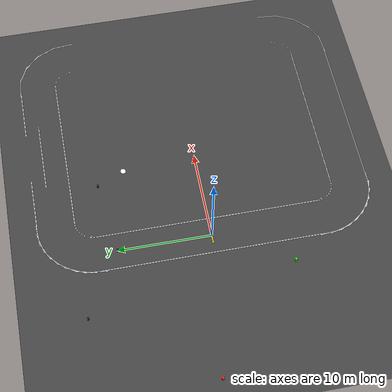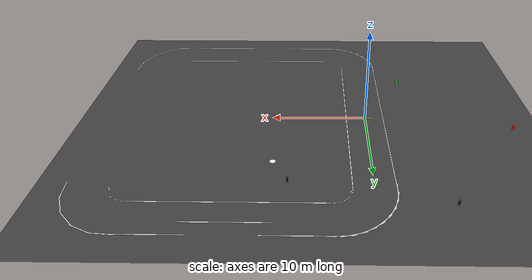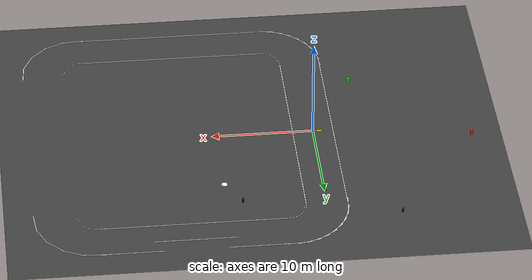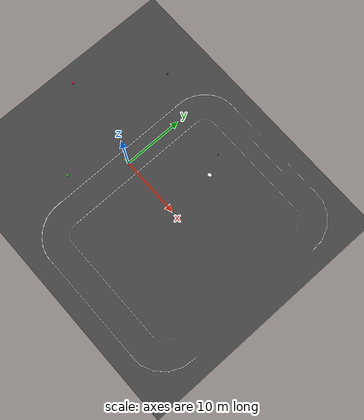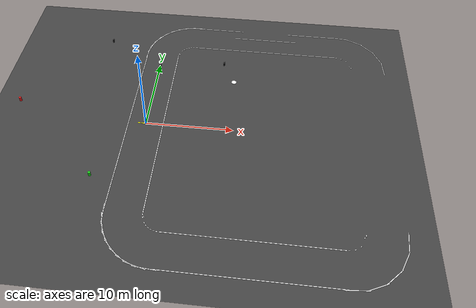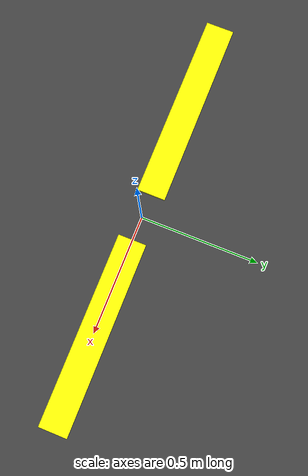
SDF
<?xml version="1.0" ?>
<sdf version="1.8">
  <world name="competition_track">

    <!-- Physics & Plugins -->
    <physics name="1ms" type="ignored">
      <max_step_size>0.001</max_step_size>
      <real_time_factor>1.0</real_time_factor>
    </physics>
    <plugin filename="gz-sim-physics-system" name="gz::sim::systems::Physics"/>
    <plugin filename="gz-sim-user-commands-system" name="gz::sim::systems::UserCommands"/>
    <plugin filename="gz-sim-scene-broadcaster-system" name="gz::sim::systems::SceneBroadcaster"/>
    <plugin filename="gz-sim-sensors-system" name="gz::sim::systems::Sensors">
      <render_engine>ogre2</render_engine>
    </plugin>
    <plugin filename="gz-sim-imu-system" name="gz::sim::systems::Imu"/>
    <plugin filename="gz-sim-navsat-system" name="gz::sim::systems::NavSat"/>

    <spherical_coordinates>
      <surface_model>EARTH_WGS84</surface_model>
      <world_frame_orientation>ENU</world_frame_orientation>
      <latitude_deg>31.2001</latitude_deg>
      <longitude_deg>29.9187</longitude_deg>
      <elevation>10.0</elevation>
      <heading_deg>0.0</heading_deg>
    </spherical_coordinates>

    <!-- Lighting -->
    <light name="sun" type="directional">
      <pose>0 10 20 0 0 0</pose>
      <diffuse>0.95 0.95 0.90 1</diffuse>
      <specular>0.1 0.1 0.1 1</specular>
      <direction>-0.3 0.1 -0.9</direction>
      <cast_shadows>true</cast_shadows>
    </light>

    <!-- Ground Plane -->
    <model name="ground_plane">
      <static>true</static>
      <link name="link">
        <collision name="col">
          <geometry>
            <plane>
              <normal>0 0 1</normal>
              <size>200 200</size>
            </plane>
          </geometry>
        </collision>
        <visual name="vis">
          <geometry>
            <plane>
              <normal>0 0 1</normal>
              <size>200 200</size>
            </plane>
          </geometry>
          <material>
            <ambient>0.20 0.20 0.20 1</ambient>
            <diffuse>0.25 0.25 0.25 1</diffuse>
          </material>
        </visual>
      </link>
    </model>

    <!-- Track Borders -->
    <model name="track_borders">
      <static>true</static>
      <pose>2 0 0.005 0 0 -1.5708</pose>

      <!-- Bottom Straight -->
      <link name="bot_inner">
        <visual name="v">
          <pose>0 0 0 0 0 0</pose>
          <geometry><box><size>24.0 0.08 0.01</size></box></geometry>
          <material><ambient>1 1 1 1</ambient><diffuse>1 1 1 1</diffuse></material>
        </visual>
      </link>
      <link name="bot_outer">
        <visual name="v">
          <pose>0 -4.0 0 0 0 0</pose>
          <geometry><box><size>24.0 0.08 0.01</size></box></geometry>
          <material><ambient>1 1 1 1</ambient><diffuse>1 1 1 1</diffuse></material>
        </visual>
      </link>

      <!-- Right Straight -->
      <link name="right_inner">
        <visual name="v">
          <pose>14.0 11.0 0 0 0 1.5708</pose>
          <geometry><box><size>18.0 0.08 0.01</size></box></geometry>
          <material><ambient>1 1 1 1</ambient><diffuse>1 1 1 1</diffuse></material>
        </visual>
      </link>
      <link name="right_outer">
        <visual name="v">
          <pose>18.0 11.0 0 0 0 1.5708</pose>
          <geometry><box><size>18.0 0.08 0.01</size></box></geometry>
          <material><ambient>1 1 1 1</ambient><diffuse>1 1 1 1</diffuse></material>
        </visual>
      </link>

      <!-- ==================== LEFT STRAIGHT WITH NARROW SECTION ==================== -->

      <!-- Inner border stays straight the whole height (y from ~2 to ~20) -->
      <link name="left_inner">
        <visual name="v">
          <pose>-14.0 11.0 0 0 0 1.5708</pose>
          <geometry><box><size>18.0 0.08 0.01</size></box></geometry>
          <material><ambient>1 1 1 1</ambient><diffuse>1 1 1 1</diffuse></material>
        </visual>
      </link>

      <!-- Outer border - normal width at bottom -->
      <link name="left_outer_bottom">
        <visual name="v">
          <pose>-18.0 5.0 0 0 0 1.5708</pose>
          <geometry><box><size>6.0 0.08 0.01</size></box></geometry>
          <material><ambient>1 1 1 1</ambient><diffuse>1 1 1 1</diffuse></material>
        </visual>
      </link>

      <!-- Narrow section (thinner part) - outer moves inward -->
      <link name="left_outer_narrow">
        <visual name="v">
          <pose>-16.5 11.0 0 0 0 1.5708</pose>
          <geometry><box><size>8.0 0.08 0.01</size></box></geometry>
          <material><ambient>1 1 1 1</ambient><diffuse>1 1 1 1</diffuse></material>
        </visual>
      </link>

      <!-- Outer border - normal width at top -->
      <link name="left_outer_top">
        <visual name="v">
          <pose>-18.0 17.0 0 0 0 1.5708</pose>
          <geometry><box><size>6.0 0.08 0.01</size></box></geometry>
          <material><ambient>1 1 1 1</ambient><diffuse>1 1 1 1</diffuse></material>
        </visual>
      </link>

      <!-- SE Inner Corner -->
      <link name="se_inner">
        <visual name="s0"><pose>12.174 0.008 0 0 0 0.087</pose><geometry><box><size>0.18 0.08 0.01</size></box></geometry><material><ambient>1 1 1 1</ambient><diffuse>1 1 1 1</diffuse></material></visual>
        <visual name="s1"><pose>12.520 0.068 0 0 0 0.262</pose><geometry><box><size>0.18 0.08 0.01</size></box></geometry><material><ambient>1 1 1 1</ambient><diffuse>1 1 1 1</diffuse></material></visual>
        <visual name="s2"><pose>12.452 0.188 0 0 0 0.436</pose><geometry><box><size>0.18 0.08 0.01</size></box></geometry><material><ambient>1 1 1 1</ambient><diffuse>1 1 1 1</diffuse></material></visual>
        <visual name="s3"><pose>13.158 0.362 0 0 0 0.611</pose><geometry><box><size>0.18 0.08 0.01</size></box></geometry><material><ambient>1 1 1 1</ambient><diffuse>1 1 1 1</diffuse></material></visual>
        <visual name="s4"><pose>13.427 0.584 0 0 0 0.785</pose><geometry><box><size>0.18 0.08 0.01</size></box></geometry><material><ambient>1 1 1 1</ambient><diffuse>1 1 1 1</diffuse></material></visual>
        <visual name="s5"><pose>13.650 0.842 0 0 0 0.960</pose><geometry><box><size>0.18 0.08 0.01</size></box></geometry><material><ambient>1 1 1 1</ambient><diffuse>1 1 1 1</diffuse></material></visual>
        <visual name="s6"><pose>13.821 1.130 0 0 0 1.134</pose><geometry><box><size>0.18 0.08 0.01</size></box></geometry><material><ambient>1 1 1 1</ambient><diffuse>1 1 1 1</diffuse></material></visual>
        <visual name="s7"><pose>13.935 1.436 0 0 0 1.309</pose><geometry><box><size>0.18 0.08 0.01</size></box></geometry><material><ambient>1 1 1 1</ambient><diffuse>1 1 1 1</diffuse></material></visual>
        <visual name="s8"><pose>13.989 1.749 0 0 0 1.484</pose><geometry><box><size>0.18 0.08 0.01</size></box></geometry><material><ambient>1 1 1 1</ambient><diffuse>1 1 1 1</diffuse></material></visual>
      </link>

      <!-- SE Outer Corner -->
      <link name="se_outer">
        <visual name="s0"><pose>12.523 -3.977 0 0 0 0.087</pose><geometry><box><size>2.4 0.08 0.01</size></box></geometry><material><ambient>1 1 1 1</ambient><diffuse>1 1 1 1</diffuse></material></visual>
        <visual name="s1"><pose>13.560 -3.795 0 0 0 0.262</pose><geometry><box><size>2.4 0.08 0.01</size></box></geometry><material><ambient>1 1 1 1</ambient><diffuse>1 1 1 1</diffuse></material></visual>
        <visual name="s2"><pose>14.557 -3.435 0 0 0 0.436</pose><geometry><box><size>2.4 0.08 0.01</size></box></geometry><material><ambient>1 1 1 1</ambient><diffuse>1 1 1 1</diffuse></material></visual>
        <visual name="s3"><pose>15.474 -2.913 0 0 0 0.611</pose><geometry><box><size>2.4 0.08 0.01</size></box></geometry><material><ambient>1 1 1 1</ambient><diffuse>1 1 1 1</diffuse></material></visual>
        <visual name="s4"><pose>16.282 -2.247 0 0 0 0.785</pose><geometry><box><size>2.4 0.08 0.01</size></box></geometry><material><ambient>1 1 1 1</ambient><diffuse>1 1 1 1</diffuse></material></visual>
        <visual name="s5"><pose>16.950 -1.474 0 0 0 0.960</pose><geometry><box><size>2.4 0.08 0.01</size></box></geometry><material><ambient>1 1 1 1</ambient><diffuse>1 1 1 1</diffuse></material></visual>
        <visual name="s6"><pose>17.464 -0.612 0 0 0 1.134</pose><geometry><box><size>2.4 0.08 0.01</size></box></geometry><material><ambient>1 1 1 1</ambient><diffuse>1 1 1 1</diffuse></material></visual>
        <visual name="s7"><pose>17.805 0.306 0 0 0 1.309</pose><geometry><box><size>2.4 0.08 0.01</size></box></geometry><material><ambient>1 1 1 1</ambient><diffuse>1 1 1 1</diffuse></material></visual>
        <visual name="s8"><pose>17.968 1.248 0 0 0 1.484</pose><geometry><box><size>2.4 0.08 0.01</size></box></geometry><material><ambient>1 1 1 1</ambient><diffuse>1 1 1 1</diffuse></material></visual>
      </link>

      <!-- SW Inner Corner -->
      <link name="sw_inner">
        <visual name="s0"><pose>-12.174 0.008 0 0 0 -0.087</pose><geometry><box><size>0.18 0.08 0.01</size></box></geometry><material><ambient>1 1 1 1</ambient><diffuse>1 1 1 1</diffuse></material></visual>
        <visual name="s1"><pose>-12.520 0.068 0 0 0 -0.262</pose><geometry><box><size>0.18 0.08 0.01</size></box></geometry><material><ambient>1 1 1 1</ambient><diffuse>1 1 1 1</diffuse></material></visual>
        <visual name="s2"><pose>-12.452 0.188 0 0 0 -0.436</pose><geometry><box><size>0.18 0.08 0.01</size></box></geometry><material><ambient>1 1 1 1</ambient><diffuse>1 1 1 1</diffuse></material></visual>
        <visual name="s3"><pose>-13.158 0.362 0 0 0 -0.611</pose><geometry><box><size>0.18 0.08 0.01</size></box></geometry><material><ambient>1 1 1 1</ambient><diffuse>1 1 1 1</diffuse></material></visual>
        <visual name="s4"><pose>-13.427 0.584 0 0 0 -0.785</pose><geometry><box><size>0.18 0.08 0.01</size></box></geometry><material><ambient>1 1 1 1</ambient><diffuse>1 1 1 1</diffuse></material></visual>
        <visual name="s5"><pose>-13.650 0.842 0 0 0 -0.960</pose><geometry><box><size>0.18 0.08 0.01</size></box></geometry><material><ambient>1 1 1 1</ambient><diffuse>1 1 1 1</diffuse></material></visual>
        <visual name="s6"><pose>-13.821 1.130 0 0 0 -1.134</pose><geometry><box><size>0.18 0.08 0.01</size></box></geometry><material><ambient>1 1 1 1</ambient><diffuse>1 1 1 1</diffuse></material></visual>
        <visual name="s7"><pose>-13.935 1.436 0 0 0 -1.309</pose><geometry><box><size>0.18 0.08 0.01</size></box></geometry><material><ambient>1 1 1 1</ambient><diffuse>1 1 1 1</diffuse></material></visual>
        <visual name="s8"><pose>-13.989 1.749 0 0 0 -1.484</pose><geometry><box><size>0.18 0.08 0.01</size></box></geometry><material><ambient>1 1 1 1</ambient><diffuse>1 1 1 1</diffuse></material></visual>
      </link>

      <!-- SW Outer Corner -->
      <link name="sw_outer">
        <visual name="s0"><pose>-12.523 -3.977 0 0 0 -0.087</pose><geometry><box><size>2.4 0.08 0.01</size></box></geometry><material><ambient>1 1 1 1</ambient><diffuse>1 1 1 1</diffuse></material></visual>
        <visual name="s1"><pose>-13.560 -3.795 0 0 0 -0.262</pose><geometry><box><size>2.4 0.08 0.01</size></box></geometry><material><ambient>1 1 1 1</ambient><diffuse>1 1 1 1</diffuse></material></visual>
        <visual name="s2"><pose>-14.557 -3.435 0 0 0 -0.436</pose><geometry><box><size>2.4 0.08 0.01</size></box></geometry><material><ambient>1 1 1 1</ambient><diffuse>1 1 1 1</diffuse></material></visual>
        <visual name="s3"><pose>-15.474 -2.913 0 0 0 -0.611</pose><geometry><box><size>2.4 0.08 0.01</size></box></geometry><material><ambient>1 1 1 1</ambient><diffuse>1 1 1 1</diffuse></material></visual>
        <visual name="s4"><pose>-16.282 -2.247 0 0 0 -0.785</pose><geometry><box><size>2.4 0.08 0.01</size></box></geometry><material><ambient>1 1 1 1</ambient><diffuse>1 1 1 1</diffuse></material></visual>
        <visual name="s5"><pose>-16.950 -1.474 0 0 0 -0.960</pose><geometry><box><size>2.4 0.08 0.01</size></box></geometry><material><ambient>1 1 1 1</ambient><diffuse>1 1 1 1</diffuse></material></visual>
        <visual name="s6"><pose>-17.464 -0.612 0 0 0 -1.134</pose><geometry><box><size>2.4 0.08 0.01</size></box></geometry><material><ambient>1 1 1 1</ambient><diffuse>1 1 1 1</diffuse></material></visual>
        <visual name="s7"><pose>-17.805 0.306 0 0 0 -1.309</pose><geometry><box><size>2.4 0.08 0.01</size></box></geometry><material><ambient>1 1 1 1</ambient><diffuse>1 1 1 1</diffuse></material></visual>
        <visual name="s8"><pose>-17.968 1.248 0 0 0 -1.484</pose><geometry><box><size>2.4 0.08 0.01</size></box></geometry><material><ambient>1 1 1 1</ambient><diffuse>1 1 1 1</diffuse></material></visual>
      </link>

      <!-- NE Inner Corner -->
      <link name="ne_inner">
        <visual name="s0"><pose>13.989 20.251 0 0 0 1.658</pose><geometry><box><size>0.18 0.08 0.01</size></box></geometry><material><ambient>1 1 1 1</ambient><diffuse>1 1 1 1</diffuse></material></visual>
        <visual name="s1"><pose>13.821 20.870 0 0 0 2.007</pose><geometry><box><size>0.18 0.08 0.01</size></box></geometry><material><ambient>1 1 1 1</ambient><diffuse>1 1 1 1</diffuse></material></visual>
        <visual name="s2"><pose>13.427 21.416 0 0 0 2.356</pose><geometry><box><size>0.18 0.08 0.01</size></box></geometry><material><ambient>1 1 1 1</ambient><diffuse>1 1 1 1</diffuse></material></visual>
        <visual name="s3"><pose>12.452 21.812 0 0 0 2.705</pose><geometry><box><size>0.18 0.08 0.01</size></box></geometry><material><ambient>1 1 1 1</ambient><diffuse>1 1 1 1</diffuse></material></visual>
        <visual name="s4"><pose>12.174 21.992 0 0 0 3.054</pose><geometry><box><size>0.18 0.08 0.01</size></box></geometry><material><ambient>1 1 1 1</ambient><diffuse>1 1 1 1</diffuse></material></visual>
      </link>

      <!-- NE Outer Corner -->
      <link name="ne_outer">
        <visual name="s0"><pose>17.968 20.752 0 0 0 1.658</pose><geometry><box><size>2.4 0.08 0.01</size></box></geometry><material><ambient>1 1 1 1</ambient><diffuse>1 1 1 1</diffuse></material></visual>
        <visual name="s1"><pose>17.464 22.612 0 0 0 2.007</pose><geometry><box><size>2.4 0.08 0.01</size></box></geometry><material><ambient>1 1 1 1</ambient><diffuse>1 1 1 1</diffuse></material></visual>
        <visual name="s2"><pose>16.282 24.247 0 0 0 2.356</pose><geometry><box><size>2.4 0.08 0.01</size></box></geometry><material><ambient>1 1 1 1</ambient><diffuse>1 1 1 1</diffuse></material></visual>
        <visual name="s3"><pose>14.557 25.435 0 0 0 2.705</pose><geometry><box><size>2.4 0.08 0.01</size></box></geometry><material><ambient>1 1 1 1</ambient><diffuse>1 1 1 1</diffuse></material></visual>
        <visual name="s4"><pose>12.523 25.977 0 0 0 3.054</pose><geometry><box><size>2.4 0.08 0.01</size></box></geometry><material><ambient>1 1 1 1</ambient><diffuse>1 1 1 1</diffuse></material></visual>
      </link>

      <!-- NW Inner Corner -->
      <link name="nw_inner">
        <visual name="s0"><pose>-13.989 20.251 0 0 0 -1.658</pose><geometry><box><size>0.18 0.08 0.01</size></box></geometry><material><ambient>1 1 1 1</ambient><diffuse>1 1 1 1</diffuse></material></visual>
        <visual name="s1"><pose>-13.821 20.870 0 0 0 -2.007</pose><geometry><box><size>0.18 0.08 0.01</size></box></geometry><material><ambient>1 1 1 1</ambient><diffuse>1 1 1 1</diffuse></material></visual>
        <visual name="s2"><pose>-13.427 21.416 0 0 0 -2.356</pose><geometry><box><size>0.18 0.08 0.01</size></box></geometry><material><ambient>1 1 1 1</ambient><diffuse>1 1 1 1</diffuse></material></visual>
        <visual name="s3"><pose>-12.452 21.812 0 0 0 -2.705</pose><geometry><box><size>0.18 0.08 0.01</size></box></geometry><material><ambient>1 1 1 1</ambient><diffuse>1 1 1 1</diffuse></material></visual>
        <visual name="s4"><pose>-12.174 21.992 0 0 0 -3.054</pose><geometry><box><size>0.18 0.08 0.01</size></box></geometry><material><ambient>1 1 1 1</ambient><diffuse>1 1 1 1</diffuse></material></visual>
      </link>

      <!-- NW Outer Corner -->
      <link name="nw_outer">
        <visual name="s0"><pose>-17.968 20.752 0 0 0 -1.658</pose><geometry><box><size>2.4 0.08 0.01</size></box></geometry><material><ambient>1 1 1 1</ambient><diffuse>1 1 1 1</diffuse></material></visual>
        <visual name="s1"><pose>-17.464 22.612 0 0 0 -2.007</pose><geometry><box><size>2.4 0.08 0.01</size></box></geometry><material><ambient>1 1 1 1</ambient><diffuse>1 1 1 1</diffuse></material></visual>
        <visual name="s2"><pose>-16.282 24.247 0 0 0 -2.356</pose><geometry><box><size>2.4 0.08 0.01</size></box></geometry><material><ambient>1 1 1 1</ambient><diffuse>1 1 1 1</diffuse></material></visual>
        <visual name="s3"><pose>-14.557 25.435 0 0 0 -2.705</pose><geometry><box><size>2.4 0.08 0.01</size></box></geometry><material><ambient>1 1 1 1</ambient><diffuse>1 1 1 1</diffuse></material></visual>
        <visual name="s4"><pose>-12.523 25.977 0 0 0 -3.054</pose><geometry><box><size>2.4 0.08 0.01</size></box></geometry><material><ambient>1 1 1 1</ambient><diffuse>1 1 1 1</diffuse></material></visual>
      </link>

    </model>

    <!-- Start Line -->
    <model name="start_line">
      <static>true</static>
      <pose>0 0 0.006 0 0 -1.5708</pose>
      <link name="dash1">
        <visual name="v">
          <pose>0 0.5 0 0 0 1.5708</pose>
          <geometry><box><size>0.8 0.12 0.01</size></box></geometry>
          <material><ambient>1 1 0 1</ambient><diffuse>1 1 0 1</diffuse></material>
        </visual>
      </link>
      <link name="dash2">
        <visual name="v">
          <pose>0 -0.5 0 0 0 1.5708</pose>
          <geometry><box><size>0.8 0.12 0.01</size></box></geometry>
          <material><ambient>1 1 0 1</ambient><diffuse>1 1 0 1</diffuse></material>
        </visual>
      </link>
    </model>

    <!-- Waypoints -->
    <model name="waypoint_1">
      <static>true</static>
      <pose>8.0 11.0 0.25 0 0 0</pose>
      <link name="link">
        <visual name="v">
          <geometry><cylinder><radius>0.12</radius><length>0.5</length></cylinder></geometry>
          <material><ambient>0.05 0.05 0.05 1</ambient><diffuse>0.05 0.05 0.05 1</diffuse></material>
        </visual>
        <collision name="col">
          <geometry><cylinder><radius>0.12</radius><length>0.5</length></cylinder></geometry>
        </collision>
      </link>
    </model>

    <model name="waypoint_2">
      <static>true</static>
      <pose>0.0 10.0 0.25 0 0 0</pose>
      <link name="link">
        <visual name="v">
          <geometry><cylinder><radius>0.12</radius><length>0.5</length></cylinder></geometry>
          <material><ambient>0.05 0.05 0.05 1</ambient><diffuse>0.05 0.05 0.05 1</diffuse></material>
        </visual>
        <collision name="col">
          <geometry><cylinder><radius>0.12</radius><length>0.5</length></cylinder></geometry>
        </collision>
      </link>
    </model>

    <model name="waypoint_3">
      <static>true</static>
      <pose>-7.0 14.0 0.25 0 0 0</pose>
      <link name="link">
        <visual name="v">
          <geometry><cylinder><radius>0.12</radius><length>0.5</length></cylinder></geometry>
          <material><ambient>0.05 0.05 0.05 1</ambient><diffuse>0.05 0.05 0.05 1</diffuse></material>
        </visual>
        <collision name="col">
          <geometry><cylinder><radius>0.12</radius><length>0.5</length></cylinder></geometry>
        </collision>
      </link>
    </model>

    <!-- Potholes -->
    <model name="pothole_1"><static>true</static><pose>9.5 8.0 0.006 0 0 0</pose>
      <link name="link">
        <visual name="v">
          <geometry><cylinder><radius>0.30</radius><length>0.01</length></cylinder></geometry>
          <material><ambient>1 1 1 1</ambient><diffuse>1 1 1 1</diffuse></material>
        </visual>
      </link>
    </model>

    <!-- Red obstacle -->
    <model name="red_obs_1">
      <static>true</static>
      <pose>-15.5 2.0 0.25 0 0 0</pose>
      <link name="link">
        <collision name="c">
          <geometry><cylinder><radius>0.15</radius><length>0.5</length></cylinder></geometry>
        </collision>
        <visual name="v">
          <geometry><cylinder><radius>0.15</radius><length>0.5</length></cylinder></geometry>
          <material><ambient>0.9 0.1 0.1 1</ambient><diffuse>0.9 0.1 0.1 1</diffuse></material>
        </visual>
      </link>
    </model>

    <!-- Green obstacle -->
    <model name="green_obs_1">
      <static>true</static>
      <pose>-4.5 -8.0 0.25 0 0 0</pose>
      <link name="link">
        <collision name="c">
          <geometry><cylinder><radius>0.15</radius><length>0.5</length></cylinder></geometry>
        </collision>
        <visual name="v">
          <geometry><cylinder><radius>0.15</radius><length>0.5</length></cylinder></geometry>
          <material><ambient>0.1 0.8 0.1 1</ambient><diffuse>0.1 0.8 0.1 1</diffuse></material>
        </visual>
      </link>
    </model>

  </world>
</sdf>
